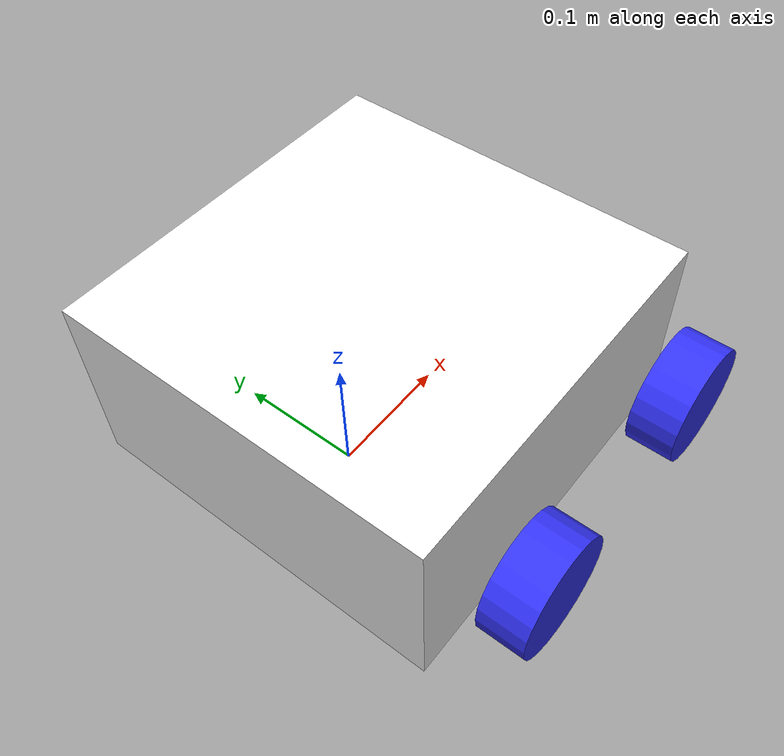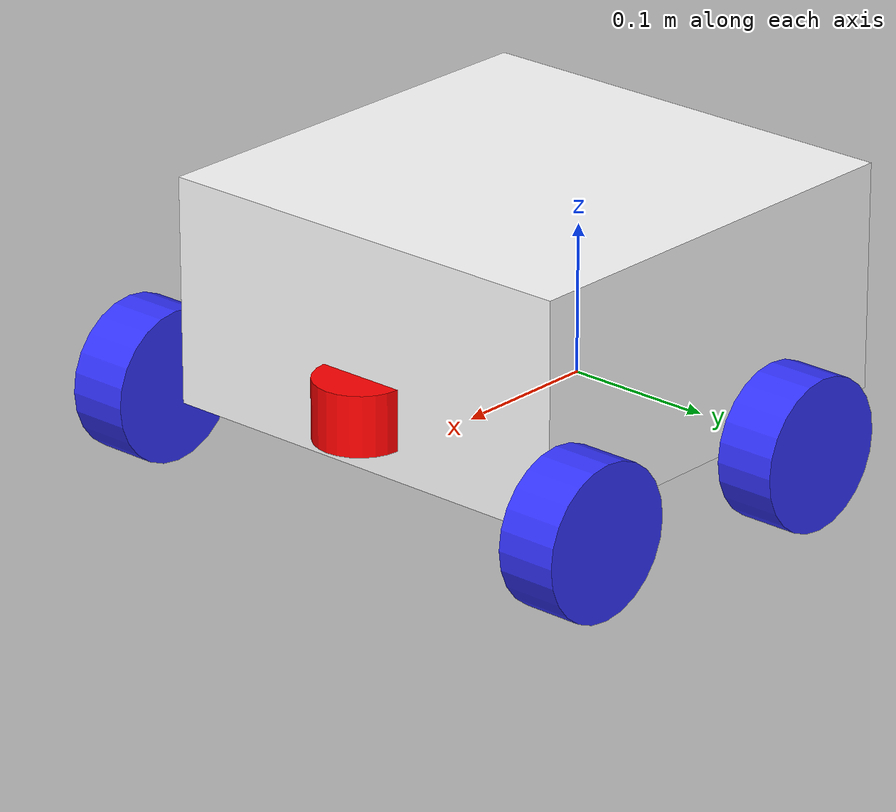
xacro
<?xml version="1.0"?>
<robot xmlns:xacro="http://www.ros.org/wiki/xacro" name="robot">

    <!-- Example link -->
    <xacro:include filename="properties.xacro" />
    <xacro:include filename="inertial_macros.xacro" />
    <xacro:include filename="robot_core_akerman.xacro" />
    <xacro:include filename="gazebo_control_akerman.xacro" />

</robot>

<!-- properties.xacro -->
<robot xmlns:xacro="http://www.ros.org/wiki/xacro">
    <!-- Color Definitions -->
    <material name="white">
        <color rgba="1 1 1 1" />
    </material>

    <material name="orange">
        <color rgba="1 0.3 0.1 1" />
    </material>

    <material name="blue">
        <color rgba="0.2 0.2 1 1" />
    </material>

    <material name="black">
        <color rgba="0 0 0 1" />
    </material>

    <material name="red">
        <color rgba="1 0 0 1" />
    </material>
</robot>

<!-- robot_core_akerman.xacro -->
<robot xmlns:xacro="http://www.ros.org/wiki/xacro">

    <!-- Example link -->
    <xacro:include filename="inertial_macros.xacro" />

    <!-- Example link -->
    <link name="base_link">
    </link>

    <joint name="base_link" type="fixed">
        <parent link="base_link" />
        <child link="chassis" />
        <origin xyz="-0.1 0 0" />
    </joint>

    <!-- chassis link -->
    <link name="chassis">
        <visual>
            <origin xyz="0.15 0 0.075" />
            <geometry>
                <box size="0.3 0.3 0.15" />
            </geometry>
            <material name="white" />
        </visual>
        <collision>
            <origin xyz="0.15 0 0.075" />
            <geometry>
                <box size="0.3 0.3 0.15" />
            </geometry>
        </collision>
        <xacro:inertial_box mass="0.5" x="0.3" y="0.3" z="0.15">
            <origin xyz="0.15 0 0.075" rpy="0 0 0" />
        </xacro:inertial_box>
    </link>
    <gazebo
        reference="chassis">
        <material>Gazebo/White</material>
    </gazebo>

    <!-- left wheel link -->
    <link name="rear_left_wheel">
        <visual>
            <geometry>
                <cylinder radius="0.05" length="0.04" />
            </geometry>
            <material name="blue" />
        </visual>

        <collision>
            <geometry>
                <sphere radius="0.05" />
            </geometry>
        </collision>

        <xacro:inertial_cylinder mass="0.1" length="0.04" radius="0.05">
            <origin xyz="0 0 0" rpy="0 0 0" />
        </xacro:inertial_cylinder>
    </link>
    <gazebo
        reference="rear_left_wheel">
        <material>Gazebo/blue</material>
    </gazebo>

    <!-- right wheel link -->
    <link name="rear_right_wheel">
        <visual>
            <geometry>
                <cylinder radius="0.05" length="0.04" />
            </geometry>
            <material name="blue" />
        </visual>

        <collision>
            <geometry>
                <sphere radius="0.05" />
            </geometry>
        </collision>

        <xacro:inertial_cylinder mass="0.1" length="0.04" radius="0.05">
            <origin xyz="0 0 0" rpy="0 0 0" />
        </xacro:inertial_cylinder>
    </link>
    <gazebo
        reference="rear_right_wheel">
        <material>Gazebo/blue</material>
    </gazebo>

    <link name="front_right_wheel">
        <visual>
            <geometry>
                <cylinder radius="0.05" length="0.04" />
            </geometry>
            <material name="blue" />
        </visual>

        <collision>
            <geometry>
                <sphere radius="0.05" />
            </geometry>
        </collision>

        <xacro:inertial_cylinder mass="0.1" length="0.04" radius="0.05">
            <origin xyz="0 0 0" rpy="0 0 0" />
        </xacro:inertial_cylinder>
    </link>
    <gazebo
        reference="front_right_wheel">
        <material>Gazebo/blue</material>
    </gazebo>

    <link name="front_left_wheel">
        <visual>
            <geometry>
                <cylinder radius="0.05" length="0.04" />
            </geometry>
            <material name="blue" />
        </visual>

        <collision>
            <geometry>
                <sphere radius="0.05" />
            </geometry>
        </collision>

        <xacro:inertial_cylinder mass="0.1" length="0.04" radius="0.05">
            <origin xyz="0 0 0" rpy="0 0 0" />
        </xacro:inertial_cylinder>
    </link>
    <gazebo
        reference="front_left_wheel">
        <material>Gazebo/blue</material>
    </gazebo>
    <!-- Steering wheel link -->
    <link name="steering_wheel">
        <visual>
            <origin xyz="0 0 0.02" />
            <geometry>
                <cylinder radius="0.03" length="0.04" />
            </geometry>
            <material name="red" />
        </visual>
        <collision>
            <origin xyz="0 0 0.02" />
            <geometry>
                <cylinder radius="0.03" length="0.04" />
            </geometry>
        </collision>
        <xacro:inertial_cylinder mass="0.05" length="0.04" radius="0.03">
            <origin xyz="0 0 0.02" rpy="0 0 0" />
        </xacro:inertial_cylinder>
    </link>

    <!-- right wheel joint -->
    <joint name="rear_right_wheel_joint"
        type="continuous">
        <parent link="base_link" />
        <child link="rear_right_wheel" />
        <origin xyz="0 -0.175 0" rpy="${pi/2} 0 0" />
        <axis xyz="0 0 -1" />
    </joint>

    <!-- left wheel joint -->
    <joint name="rear_left_wheel_joint"
        type="continuous">
        <parent link="base_link" />
        <child link="rear_left_wheel" />
        <origin xyz="0 0.175 0" rpy="-${pi/2} 0 0" />
        <axis xyz="0 0 1" />
    </joint>
    <!-- Conectar el steering_wheel al chasis -->
    <joint name="steering_joint" type="revolute">
        <parent link="base_link" />
        <child link="steering_wheel" />
        <origin xyz="0.20 0 0.02" />
        <axis xyz="0 0 1" />
        <limit effort="100" lower="-0.5" upper="0.5" velocity="1" />
    </joint>

    <link name="right_steering_link"></link>
    <link name="left_steering_link"></link>

    <!-- Conectar right_steering_link al steering_wheel -->
    <joint
        name="front_right_steer_joint" type="revolute">
        <parent link="steering_wheel" />
        <child link="right_steering_link" />
        <origin xyz="0 -0.175 0" />
        <axis xyz="0 0 1" />
        <limit effort="100" lower="-0.5" upper="0.5" velocity="1" />
    </joint>
    <!-- Conectar left_steering_link al steering_wheel -->
    <joint name="front_left_steer_joint" type="revolute">
        <parent link="steering_wheel" />
        <child link="left_steering_link" />
        <origin xyz="0  0.175 0" />
        <axis xyz="0 0 1" />
        <limit effort="100" lower="-0.5" upper="0.5" velocity="1" />
    </joint>

    <!-- Conectar el right_steering_link a la llanta delantera derecha -->
    <joint
        name="front_right_wheel_joint" type="continuous">
        <parent link="right_steering_link" />
        <child link="front_right_wheel" />
        <origin xyz="0 0 -0.01" rpy="-${pi/2} 0 0" />
        <axis xyz="0 0 -1" />
    </joint>  <!-- Conectar el left_steering_link a la llanta delantera
    izquierda -->
    <joint name="front_left_wheel_joint" type="continuous">
        <parent link="left_steering_link" />
        <child link="front_left_wheel" />
        <origin xyz="0 0 -0.01" rpy="-${pi/2} 0 0" />
        <axis xyz="0 0 1" />
    </joint>

    <joint name="base_footprint_joint" type="fixed">
        <parent link="base_link" />
        <child link="base_footprint" />
        <origin xyz="0 0 -0.025" />
    </joint>

    <link name="base_footprint">
    </link>
</robot>
